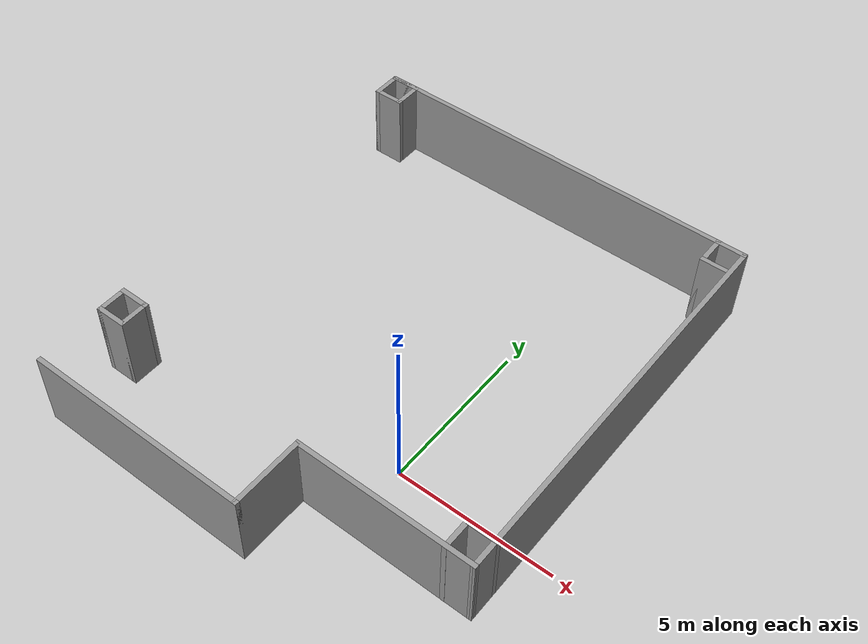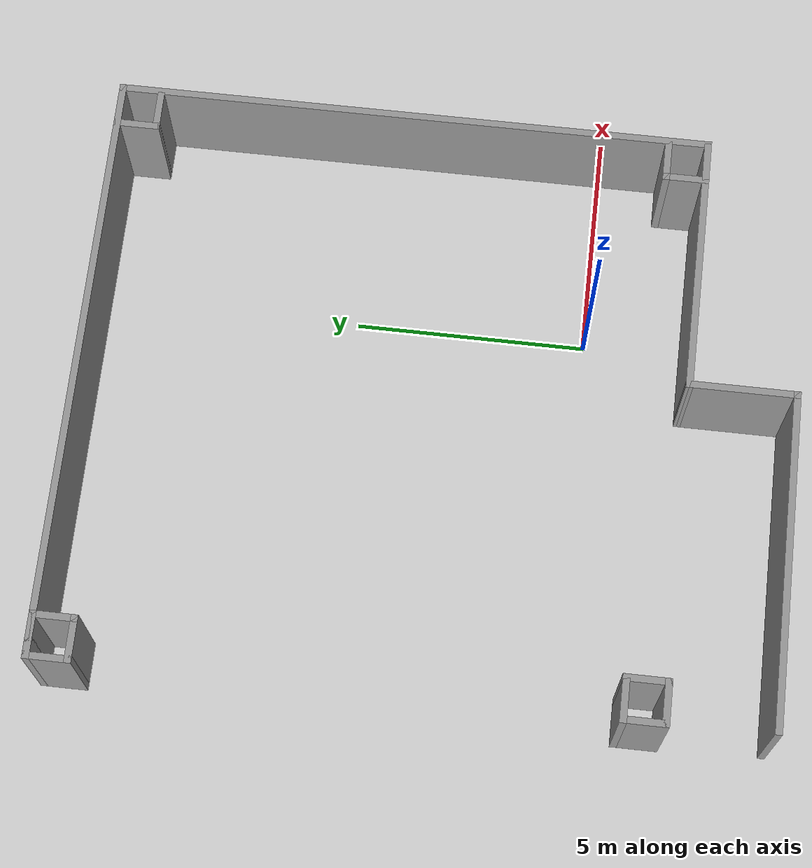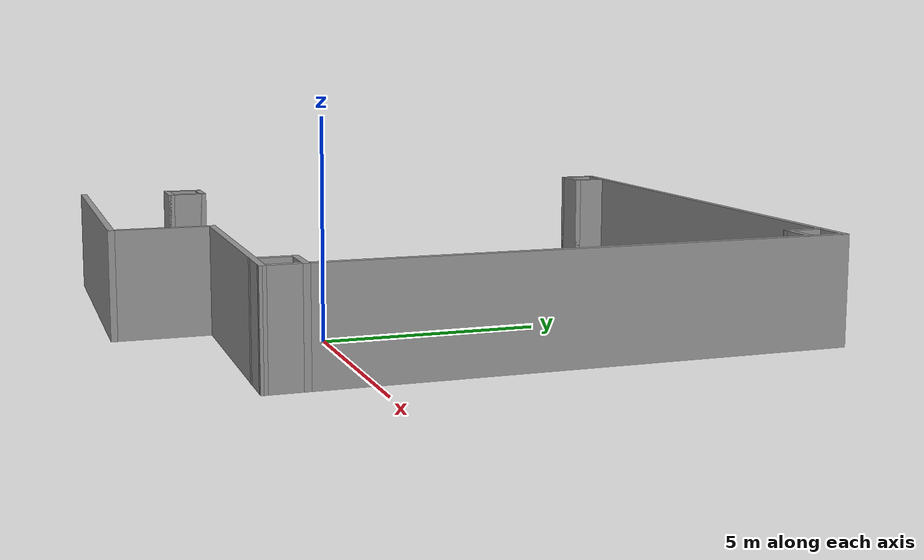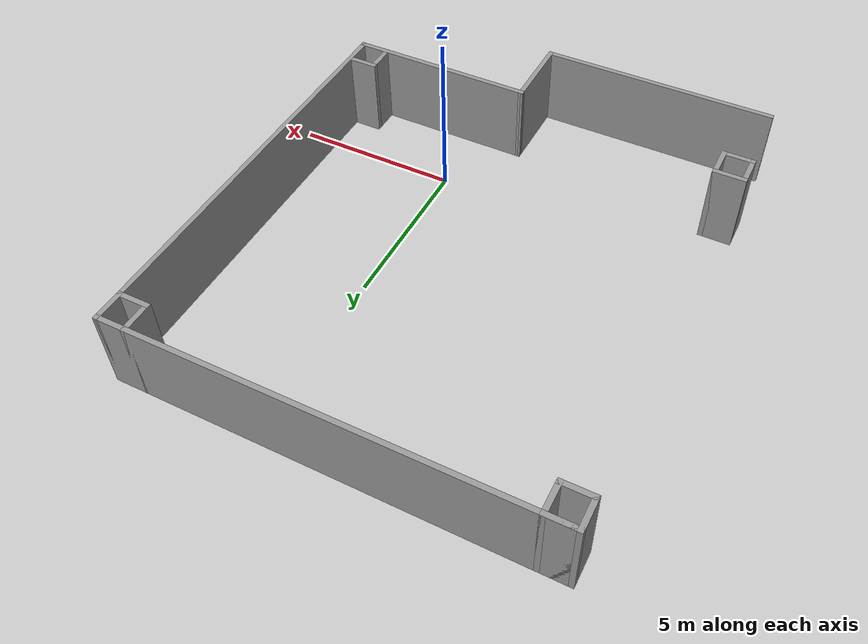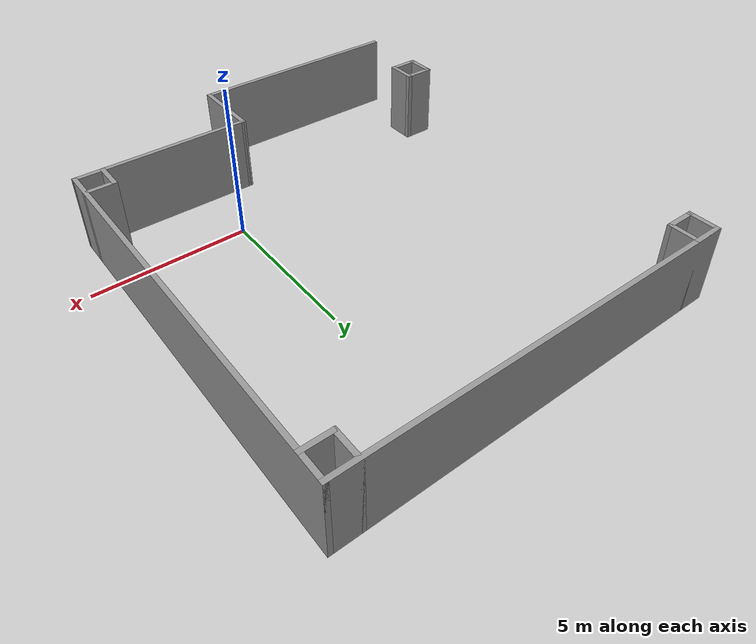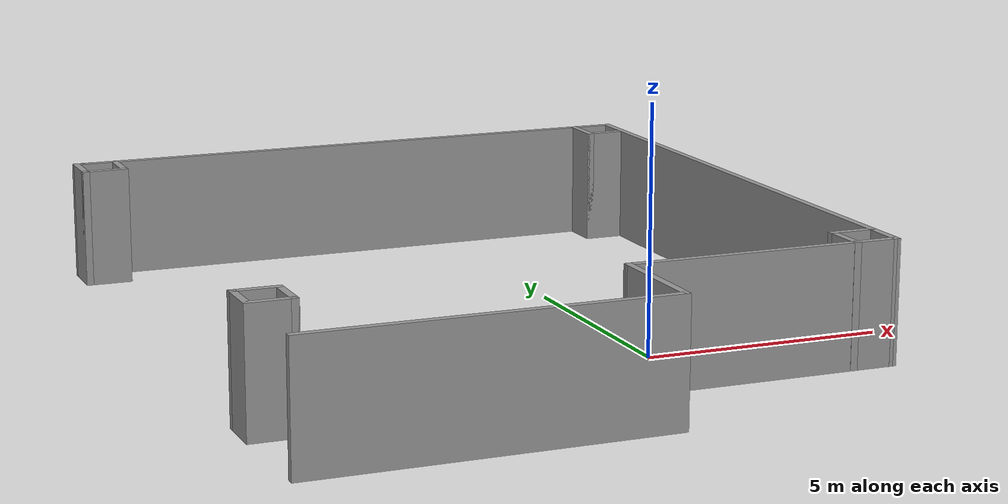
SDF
<?xml version='1.0'?>
<sdf version='1.7'>
  <model name='bookstackmap'>
    <pose>-2.31885 3.0834 0 0 -0 0</pose>
    <link name='Wall_100'>
      <collision name='Wall_100_Collision'>
        <geometry>
          <box>
            <size>1 0.15 2.5</size>
          </box>
        </geometry>
        <pose>0 0 1.25 0 -0 0</pose>
      </collision>
      <visual name='Wall_100_Visual'>
        <pose>0 0 1.25 0 -0 0</pose>
        <geometry>
          <box>
            <size>1 0.15 2.5</size>
          </box>
        </geometry>
        <material>
          <script>
            <uri>file://media/materials/scripts/gazebo.material</uri>
            <name>Gazebo/Grey</name>
          </script>
          <ambient>1 1 1 1</ambient>
        </material>
        <meta>
          <layer>0</layer>
        </meta>
      </visual>
      <pose>-5.95017 6.6677 0 0 -0 3.14159</pose>
    </link>
    <link name='Wall_103'>
      <collision name='Wall_103_Collision'>
        <geometry>
          <box>
            <size>1 0.15 2.5</size>
          </box>
        </geometry>
        <pose>0 0 1.25 0 -0 0</pose>
      </collision>
      <visual name='Wall_103_Visual'>
        <pose>0 0 1.25 0 -0 0</pose>
        <geometry>
          <box>
            <size>1 0.15 2.5</size>
          </box>
        </geometry>
        <material>
          <script>
            <uri>file://media/materials/scripts/gazebo.material</uri>
            <name>Gazebo/Grey</name>
          </script>
          <ambient>1 1 1 1</ambient>
        </material>
        <meta>
          <layer>0</layer>
        </meta>
      </visual>
      <pose>5.52483 7.0927 0 0 -0 -1.5708</pose>
    </link>
    <link name='Wall_104'>
      <collision name='Wall_104_Collision'>
        <geometry>
          <box>
            <size>1 0.15 2.5</size>
          </box>
        </geometry>
        <pose>0 0 1.25 0 -0 0</pose>
      </collision>
      <visual name='Wall_104_Visual'>
        <pose>0 0 1.25 0 -0 0</pose>
        <geometry>
          <box>
            <size>1 0.15 2.5</size>
          </box>
        </geometry>
        <material>
          <script>
            <uri>file://media/materials/scripts/gazebo.material</uri>
            <name>Gazebo/Grey</name>
          </script>
          <ambient>1 1 1 1</ambient>
        </material>
        <meta>
          <layer>0</layer>
        </meta>
      </visual>
      <pose>5.94983 6.6677 0 0 -0 0</pose>
    </link>
    <link name='Wall_107'>
      <collision name='Wall_107_Collision'>
        <geometry>
          <box>
            <size>1 0.15 2.5</size>
          </box>
        </geometry>
        <pose>0 0 1.25 0 -0 0</pose>
      </collision>
      <visual name='Wall_107_Visual'>
        <pose>0 0 1.25 0 -0 0</pose>
        <geometry>
          <box>
            <size>1 0.15 2.5</size>
          </box>
        </geometry>
        <material>
          <script>
            <uri>file://media/materials/scripts/gazebo.material</uri>
            <name>Gazebo/Grey</name>
          </script>
          <ambient>1 1 1 1</ambient>
        </material>
        <meta>
          <layer>0</layer>
        </meta>
      </visual>
      <pose>5.94983 -4.4423 0 0 -0 3.14159</pose>
    </link>
    <link name='Wall_108'>
      <collision name='Wall_108_Collision'>
        <geometry>
          <box>
            <size>1 0.15 2.5</size>
          </box>
        </geometry>
        <pose>0 0 1.25 0 -0 0</pose>
      </collision>
      <visual name='Wall_108_Visual'>
        <pose>0 0 1.25 0 -0 0</pose>
        <geometry>
          <box>
            <size>1 0.15 2.5</size>
          </box>
        </geometry>
        <material>
          <script>
            <uri>file://media/materials/scripts/gazebo.material</uri>
            <name>Gazebo/Grey</name>
          </script>
          <ambient>1 1 1 1</ambient>
        </material>
        <meta>
          <layer>0</layer>
        </meta>
      </visual>
      <pose>5.52483 -4.8673 0 0 -0 -1.5708</pose>
    </link>
    <link name='Wall_110'>
      <collision name='Wall_110_Collision'>
        <geometry>
          <box>
            <size>1 0.15 2.5</size>
          </box>
        </geometry>
        <pose>0 0 1.25 0 -0 0</pose>
      </collision>
      <visual name='Wall_110_Visual'>
        <pose>0 0 1.25 0 -0 0</pose>
        <geometry>
          <box>
            <size>1 0.15 2.5</size>
          </box>
        </geometry>
        <material>
          <script>
            <uri>file://media/materials/scripts/gazebo.material</uri>
            <name>Gazebo/Grey</name>
          </script>
          <ambient>1 1 1 1</ambient>
        </material>
        <meta>
          <layer>0</layer>
        </meta>
      </visual>
      <pose>-6.37517 7.0927 0 0 -0 -1.5708</pose>
    </link>
    <link name='Wall_78'>
      <collision name='Wall_78_Collision'>
        <geometry>
          <box>
            <size>12.9 0.15 2.5</size>
          </box>
        </geometry>
        <pose>0 0 1.25 0 -0 0</pose>
      </collision>
      <visual name='Wall_78_Visual'>
        <pose>0 0 1.25 0 -0 0</pose>
        <geometry>
          <box>
            <size>12.9 0.15 2.5</size>
          </box>
        </geometry>
        <material>
          <script>
            <uri>file://media/materials/scripts/gazebo.material</uri>
            <name>Gazebo/Grey</name>
          </script>
          <ambient>1 1 1 1</ambient>
        </material>
        <meta>
          <layer>0</layer>
        </meta>
      </visual>
      <pose>-0.000166 7.5177 0 0 -0 0</pose>
    </link>
    <link name='Wall_85'>
      <collision name='Wall_85_Collision'>
        <geometry>
          <box>
            <size>12.96 0.15 2.5</size>
          </box>
        </geometry>
        <pose>0 0 1.25 0 -0 0</pose>
      </collision>
      <visual name='Wall_85_Visual'>
        <pose>0 0 1.25 0 -0 0</pose>
        <geometry>
          <box>
            <size>12.96 0.15 2.5</size>
          </box>
        </geometry>
        <material>
          <script>
            <uri>file://media/materials/scripts/gazebo.material</uri>
            <name>Gazebo/Grey</name>
          </script>
          <ambient>1 1 1 1</ambient>
        </material>
        <meta>
          <layer>0</layer>
        </meta>
      </visual>
      <pose>6.37483 1.1127 0 0 -0 -1.5708</pose>
    </link>
    <link name='Wall_87'>
      <collision name='Wall_87_Collision'>
        <geometry>
          <box>
            <size>5.70826 0.15 2.5</size>
          </box>
        </geometry>
        <pose>0 0 1.25 0 -0 0</pose>
      </collision>
      <visual name='Wall_87_Visual'>
        <pose>0 0 1.25 0 -0 0</pose>
        <geometry>
          <box>
            <size>5.70826 0.15 2.5</size>
          </box>
        </geometry>
        <material>
          <script>
            <uri>file://media/materials/scripts/gazebo.material</uri>
            <name>Gazebo/Grey</name>
          </script>
          <ambient>1 1 1 1</ambient>
        </material>
        <meta>
          <layer>0</layer>
        </meta>
      </visual>
      <pose>3.59573 -5.28 0 0 -0 3.13717</pose>
    </link>
    <link name='Wall_89'>
      <collision name='Wall_89_Collision'>
        <geometry>
          <box>
            <size>2.4 0.15 2.5</size>
          </box>
        </geometry>
        <pose>0 0 1.25 0 -0 0</pose>
      </collision>
      <visual name='Wall_89_Visual'>
        <pose>0 0 1.25 0 -0 0</pose>
        <geometry>
          <box>
            <size>2.4 0.15 2.5</size>
          </box>
        </geometry>
        <material>
          <script>
            <uri>file://media/materials/scripts/gazebo.material</uri>
            <name>Gazebo/Grey</name>
          </script>
          <ambient>1 1 1 1</ambient>
        </material>
        <meta>
          <layer>0</layer>
        </meta>
      </visual>
      <pose>0.816634 -6.3927 0 0 -0 -1.5708</pose>
    </link>
    <link name='Wall_91'>
      <collision name='Wall_91_Collision'>
        <geometry>
          <box>
            <size>7.25 0.15 2.5</size>
          </box>
        </geometry>
        <pose>0 0 1.25 0 -0 0</pose>
      </collision>
      <visual name='Wall_91_Visual'>
        <pose>0 0 1.25 0 -0 0</pose>
        <geometry>
          <box>
            <size>7.25 0.15 2.5</size>
          </box>
        </geometry>
        <material>
          <script>
            <uri>file://media/materials/scripts/gazebo.material</uri>
            <name>Gazebo/Grey</name>
          </script>
          <ambient>1 1 1 1</ambient>
        </material>
        <meta>
          <layer>0</layer>
        </meta>
      </visual>
      <pose>-2.73337 -7.5177 0 0 -0 3.14159</pose>
    </link>
    <link name='Wall_93'>
      <collision name='Wall_93_Collision'>
        <geometry>
          <box>
            <size>1 0.15 2.5</size>
          </box>
        </geometry>
        <pose>0 0 1.25 0 -0 0</pose>
      </collision>
      <visual name='Wall_93_Visual'>
        <pose>0 0 1.25 0 -0 0</pose>
        <geometry>
          <box>
            <size>1 0.15 2.5</size>
          </box>
        </geometry>
        <material>
          <script>
            <uri>file://media/materials/scripts/gazebo.material</uri>
            <name>Gazebo/Grey</name>
          </script>
          <ambient>1 1 1 1</ambient>
        </material>
        <meta>
          <layer>0</layer>
        </meta>
      </visual>
      <pose>-5.95017 -5.2923 0 0 -0 0</pose>
    </link>
    <link name='Wall_94'>
      <collision name='Wall_94_Collision'>
        <geometry>
          <box>
            <size>1 0.15 2.5</size>
          </box>
        </geometry>
        <pose>0 0 1.25 0 -0 0</pose>
      </collision>
      <visual name='Wall_94_Visual'>
        <pose>0 0 1.25 0 -0 0</pose>
        <geometry>
          <box>
            <size>1 0.15 2.5</size>
          </box>
        </geometry>
        <material>
          <script>
            <uri>file://media/materials/scripts/gazebo.material</uri>
            <name>Gazebo/Grey</name>
          </script>
          <ambient>1 1 1 1</ambient>
        </material>
        <meta>
          <layer>0</layer>
        </meta>
      </visual>
      <pose>-5.52517 -4.8673 0 0 -0 1.5708</pose>
    </link>
    <link name='Wall_95'>
      <collision name='Wall_95_Collision'>
        <geometry>
          <box>
            <size>1 0.15 2.5</size>
          </box>
        </geometry>
        <pose>0 0 1.25 0 -0 0</pose>
      </collision>
      <visual name='Wall_95_Visual'>
        <pose>0 0 1.25 0 -0 0</pose>
        <geometry>
          <box>
            <size>1 0.15 2.5</size>
          </box>
        </geometry>
        <material>
          <script>
            <uri>file://media/materials/scripts/gazebo.material</uri>
            <name>Gazebo/Grey</name>
          </script>
          <ambient>1 1 1 1</ambient>
        </material>
        <meta>
          <layer>0</layer>
        </meta>
      </visual>
      <pose>-5.95017 -4.4423 0 0 -0 3.14159</pose>
    </link>
    <link name='Wall_96'>
      <collision name='Wall_96_Collision'>
        <geometry>
          <box>
            <size>1 0.15 2.5</size>
          </box>
        </geometry>
        <pose>0 0 1.25 0 -0 0</pose>
      </collision>
      <visual name='Wall_96_Visual'>
        <pose>0 0 1.25 0 -0 0</pose>
        <geometry>
          <box>
            <size>1 0.15 2.5</size>
          </box>
        </geometry>
        <material>
          <script>
            <uri>file://media/materials/scripts/gazebo.material</uri>
            <name>Gazebo/Grey</name>
          </script>
          <ambient>1 1 1 1</ambient>
        </material>
        <meta>
          <layer>0</layer>
        </meta>
      </visual>
      <pose>-6.37517 -4.8673 0 0 -0 -1.5708</pose>
    </link>
    <link name='Wall_98'>
      <collision name='Wall_98_Collision'>
        <geometry>
          <box>
            <size>1 0.15 2.5</size>
          </box>
        </geometry>
        <pose>0 0 1.25 0 -0 0</pose>
      </collision>
      <visual name='Wall_98_Visual'>
        <pose>0 0 1.25 0 -0 0</pose>
        <geometry>
          <box>
            <size>1 0.15 2.5</size>
          </box>
        </geometry>
        <material>
          <script>
            <uri>file://media/materials/scripts/gazebo.material</uri>
            <name>Gazebo/Grey</name>
          </script>
          <ambient>1 1 1 1</ambient>
        </material>
        <meta>
          <layer>0</layer>
        </meta>
      </visual>
      <pose>-5.95017 7.5177 0 0 -0 0</pose>
    </link>
    <link name='Wall_99'>
      <collision name='Wall_99_Collision'>
        <geometry>
          <box>
            <size>1 0.15 2.5</size>
          </box>
        </geometry>
        <pose>0 0 1.25 0 -0 0</pose>
      </collision>
      <visual name='Wall_99_Visual'>
        <pose>0 0 1.25 0 -0 0</pose>
        <geometry>
          <box>
            <size>1 0.15 2.5</size>
          </box>
        </geometry>
        <material>
          <script>
            <uri>file://media/materials/scripts/gazebo.material</uri>
            <name>Gazebo/Grey</name>
          </script>
          <ambient>1 1 1 1</ambient>
        </material>
        <meta>
          <layer>0</layer>
        </meta>
      </visual>
      <pose>-5.52517 7.0927 0 0 -0 -1.5708</pose>
    </link>
    <static>1</static>
  </model>
</sdf>
